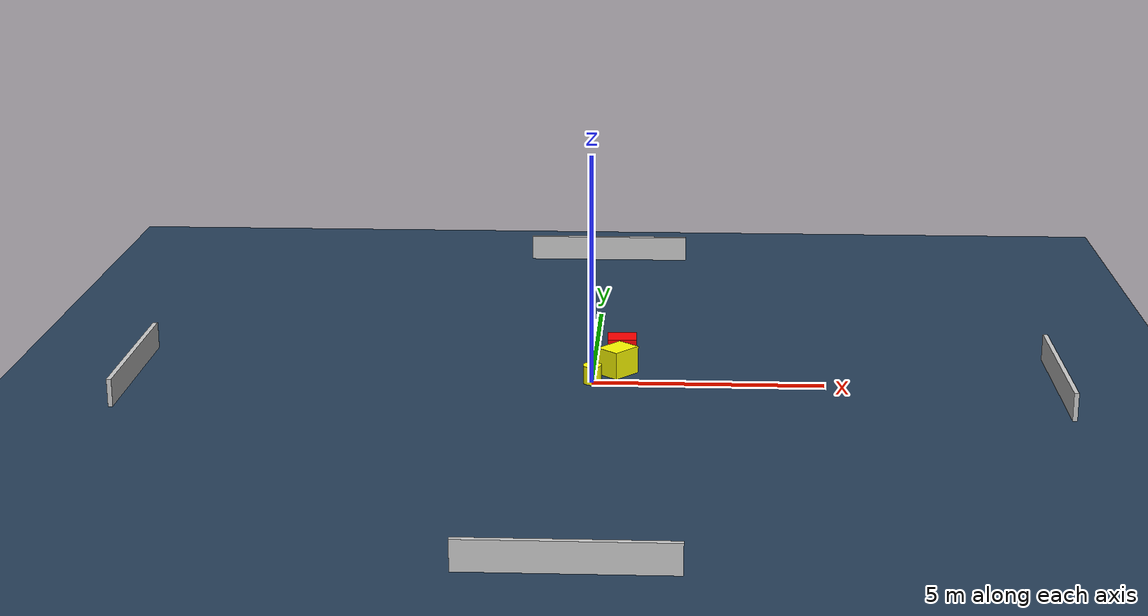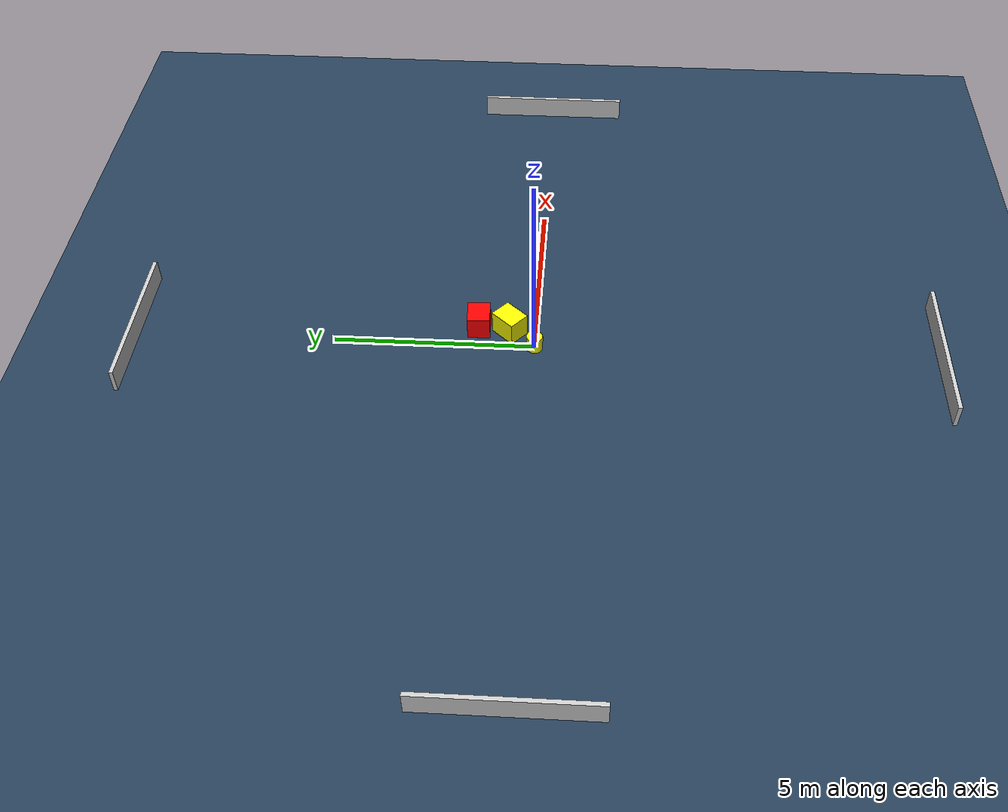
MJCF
<?xml version="1.0" ?>
<mujoco model="generated_environment">
  <option timestep="0.01" integrator="RK4" cone="elliptic"/>
  <default>
    <geom density="1"/>
  </default>
  <asset>
    <texture builtin="gradient" height="3072" name="skybox" rgb1="0.3 0.5 0.7" rgb2="0 0 0" type="skybox" width="512"/>
    <texture builtin="checker" height="300" name="groundplane" rgb1="0.2 0.3 0.4" rgb2="0.1 0.2 0.3" type="2d" width="300"/>
    <material name="groundplane" reflectance="0.2" texrepeat="5 5" texture="groundplane"/>
  </asset>
  <worldbody>
    <light dir="0 0 -1" directional="true" pos="0 0 1.5"/>
    <geom condim="3" friction="0.5 0.005 0.001" material="groundplane" name="floor" pos="0 0 0" size="0 0 0.05" type="plane"/>
    <body name="walls">
      <geom name="wall_1" condim="4" pos="-10.0 0.0 0.3" rgba="0.800000011920929 0.800000011920929 0.800000011920929 1.0" size="0.05 2.0 0.3" type="box"/>
      <geom name="wall_2" condim="4" pos="10.0 0.0 0.3" rgba="0.800000011920929 0.800000011920929 0.800000011920929 1.0" size="0.05 2.0 0.3" type="box"/>
      <geom name="wall_3" condim="4" pos="0.0 -10.0 0.3" rgba="0.800000011920929 0.800000011920929 0.800000011920929 1.0" size="2.0 0.05 0.3" type="box"/>
      <geom name="wall_4" condim="4" pos="0.0 10.0 0.3" rgba="0.800000011920929 0.800000011920929 0.800000011920929 1.0" size="2.0 0.05 0.3" type="box"/>
    </body>
    <body name="robot">
      <joint name="joint_x" type="slide" pos="0 0 0" axis="1 0 0"/>
      <joint name="joint_y" type="slide" pos="0 0 0" axis="0 1 0"/>
      <geom name="robot" type="cylinder" pos="0.0 0.0 0.2" size="0.2 0.2 0.0" mass="5.0" friction="1.0 0.005 0.0001" condim="4" rgba="1.0 1.0 0.0 1.0"/>
    </body>
    <body name="obstacle_1_movable">
      <geom name="obstacle_1_movable" condim="4" pos="0.5372564388048615 0.651667980967262 0.3" euler="0 0 48.24063511681882" friction="0.0 0.005 0.001" rgba="1.0 1.0 0.0 1.0" size="0.34894402204668296 0.27751572813201875 0.3" type="box" mass="0.1"/>
      <joint type="free"/>
    </body>
    <body name="obstacle_2_static">
      <geom name="obstacle_2_static" condim="4" pos="0.5992885300760382 1.4330018658722983 0.3" euler="0 0 2.545786145560096" friction="0.0 0.005 0.001" rgba="1.0 0.0 0.0 1.0" size="0.3208019803241422 0.2821460418237892 0.3" type="box"/>
    </body>
  </worldbody>
  <actuator>
    <motor name="actuator_x" joint="joint_x" gear="1" ctrlrange="-1 1"/>
    <motor name="actuator_y" joint="joint_y" gear="1" ctrlrange="-1 1"/>
  </actuator>
</mujoco>
